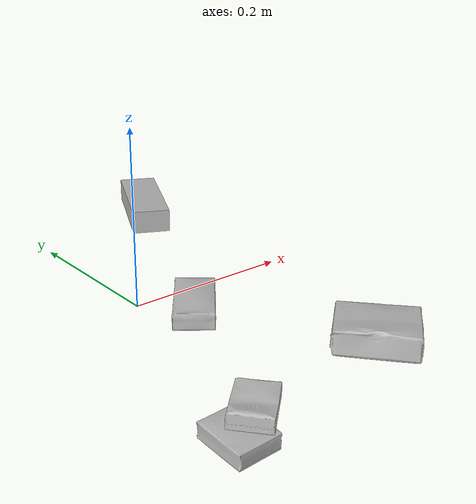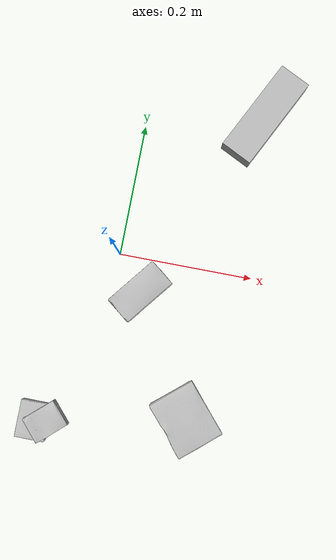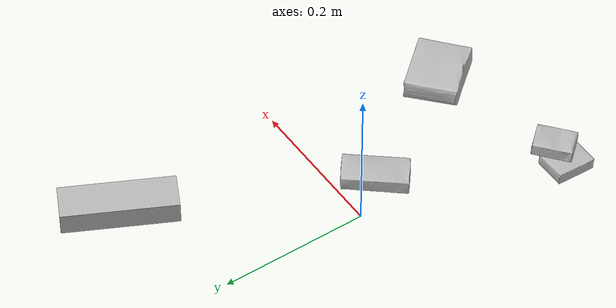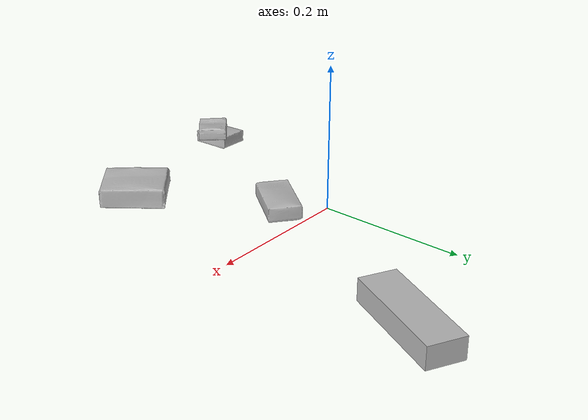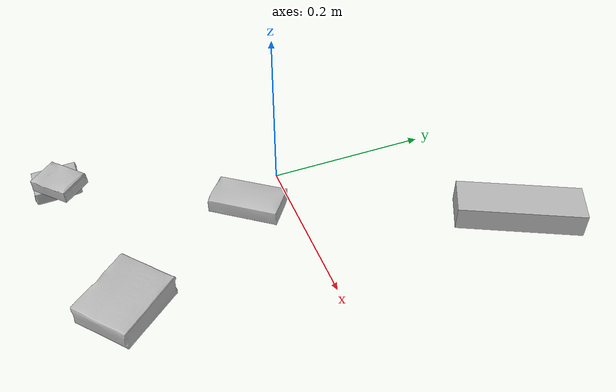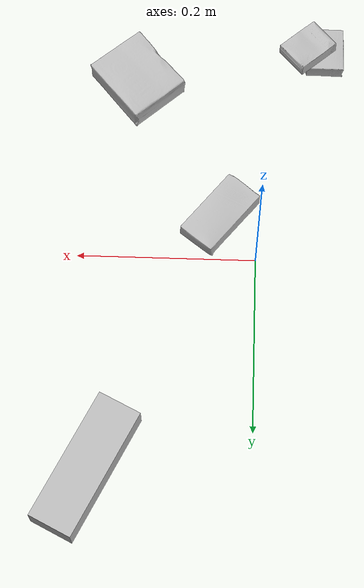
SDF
<sdf version="1.4">
  <world name="default">
    <light name="light1" type="point">
      <pose>0 0 1 0 0 0</pose>
      <diffuse>3 3 3 1</diffuse>
      <specular>3 3 3 1</specular>
    </light>
    <light name="light2" type="point">
      <pose>0 0.5 2 0 0 0</pose>
      <diffuse>1 1 1 1</diffuse>
      <specular>1 1 1 1</specular>
    </light>
    <light name="light3" type="point">
      <pose>0 0.5 2 0 0 0</pose>
      <diffuse>3 3 3 1</diffuse>
      <specular>3 3 3 1</specular>
    </light>
    <scene>
      <ambient>0.7 0.7 0.7</ambient>
    </scene>
    <model name="box1">
      <link name="link_box1">
        <collision name="default">
          <geometry>
            <mesh>
              <uri>model://sugar_box/collision_meshes/collision.obj</uri>
              <scale>0.5 0.5 0.5</scale>
            </mesh>
          </geometry>
          <surface>
            <friction>
              <ode>
                <mu>0.5</mu>
                <mu2>0.5</mu2>
              </ode>
            </friction>
          <contact>
        <ode>
            <max_vel>0</max_vel>
            <min_depth>0.0001</min_depth>
            <kp>1e8</kp>
        </ode>
    </contact></surface>
        </collision>
        <visual name="default">
          <geometry>
            <mesh>
              <uri>model://sugar_box/visual_meshes/visual.dae</uri>
              <scale>0.5 0.5 0.5</scale>
            </mesh>
          </geometry>
        </visual>
        <inertial>
          <mass>0.050072960555553436</mass>
          <pose>0.0005171863595023751 1.924554817378521e-05 -0.00018182402709499002 -0.0004046260967901466 0.0010506635218491861 0.0026153785561980193</pose>
          <inertia>
            <ixx>1.0430162e-05</ixx>
            <iyy>3.371243e-05</iyy>
            <izz>4.0357794e-05</izz>
            <ixy>0</ixy>
            <ixz>0</ixz>
            <iyz>0</iyz>
          </inertia>
        </inertial>
      </link>
      <pose>0.04053875058889389 -0.05062121897935867 0.011399303562939167 0.0007754351563242583 -0.023433293371006147 0.8994268302217933</pose>
    </model>
    <model name="box2">
      <link name="link_box2">
        <collision name="default">
          <geometry>
            <mesh>
              <uri>model://pudding_box/collision_meshes/collision.obj</uri>
              <scale>0.5 0.5 0.5</scale>
            </mesh>
          </geometry>
          <surface>
            <friction>
              <ode>
                <mu>0.5</mu>
                <mu2>0.5</mu2>
              </ode>
            </friction>
          <contact>
        <ode>
            <max_vel>0</max_vel>
            <min_depth>0.0001</min_depth>
            <kp>1e8</kp>
        </ode>
    </contact></surface>
        </collision>
        <visual name="default">
          <geometry>
            <mesh>
              <uri>model://pudding_box/visual_meshes/visual.dae</uri>
              <scale>0.5 0.5 0.5</scale>
            </mesh>
          </geometry>
        </visual>
        <inertial>
          <mass>0.026034390553832054</mass>
          <pose>0.00024474109522998333 0.00040339428232982755 -0.0002594413817860186 0.005213101355963405 -0.006603798228586091 0.020079817710543634</pose>
          <inertia>
            <ixx>7.3576343e-06</ixx>
            <iyy>4.9502682e-06</iyy>
            <izz>1.086547e-05</izz>
            <ixy>0</ixy>
            <ixz>0</ixz>
            <iyz>0</iyz>
          </inertia>
        </inertial>
      </link>
      <pose>-0.07697224617004395 -0.26339560747146606 0.009862796403467655 0.02248616078858335 -0.011327960777081151 0.0006717554738970752</pose>
    </model>
    <model name="box3">
      <link name="link_box3">
        <collision name="default">
          <geometry>
            <mesh>
              <uri>model://jenga/collision_meshes/collision.obj</uri>
              <scale>1.0 1.0 1.0</scale>
            </mesh>
          </geometry>
          <surface>
            <friction>
              <ode>
                <mu>0.5</mu>
                <mu2>0.5</mu2>
              </ode>
            </friction>
          <contact>
        <ode>
            <max_vel>0</max_vel>
            <min_depth>0.0001</min_depth>
            <kp>1e8</kp>
        </ode>
    </contact></surface>
        </collision>
        <visual name="default">
          <geometry>
            <mesh>
              <uri>model://jenga/visual_meshes/visual.dae</uri>
              <scale>1.0 1.0 1.0</scale>
            </mesh>
          </geometry>
        </visual>
        <inertial>
          <mass>0.2076648771762848</mass>
          <pose>-2.502856091268768e-07 -0.00010250010382151231 -4.0923405322246253e-05 0.0 -7.34215461761844e-07 0.0</pose>
          <inertia>
            <ixx>5.746591e-05</ixx>
            <iyy>0.00038938745</iyy>
            <izz>0.0004157042</izz>
            <ixy>0</ixy>
            <ixz>0</ixz>
            <iyz>0</iyz>
          </inertia>
        </inertial>
      </link>
      <pose>0.1755083054304123 0.24566376209259033 0.014999994076788425 -8.164406822178496e-09 -2.0737862172671957e-09 -2.0326459147955833</pose>
    </model>
    <model name="box4">
      <link name="link_box4">
        <collision name="default">
          <geometry>
            <mesh>
              <uri>model://gelatin_box/collision_meshes/collision.obj</uri>
              <scale>1.0 1.0 1.0</scale>
            </mesh>
          </geometry>
          <surface>
            <friction>
              <ode>
                <mu>0.5</mu>
                <mu2>0.5</mu2>
              </ode>
            </friction>
          <contact>
        <ode>
            <max_vel>0</max_vel>
            <min_depth>0.0001</min_depth>
            <kp>1e8</kp>
        </ode>
    </contact></surface>
        </collision>
        <visual name="default">
          <geometry>
            <mesh>
              <uri>model://gelatin_box/visual_meshes/visual.dae</uri>
              <scale>1.0 1.0 1.0</scale>
            </mesh>
          </geometry>
        </visual>
        <inertial>
          <mass>0.09577830880880356</mass>
          <pose>0.000431961816502735 0.00011156871187267825 -0.0003640321083366871 -0.0010503719862657887 -0.004755821487046037 0.01644055388468454</pose>
          <inertia>
            <ixx>6.761167e-05</ixx>
            <iyy>4.8294667e-05</iyy>
            <izz>0.00010292002</izz>
            <ixy>0</ixy>
            <ixz>0</ixz>
            <iyz>0</iyz>
          </inertia>
        </inertial>
      </link>
      <pose>0.14057622849941254 -0.21988333761692047 0.01516831386834383 0.005597017382433555 -0.007304074165812198 -2.444687093858709</pose>
    </model>
    <model name="box5">
      <link name="link_box5">
        <collision name="default">
          <geometry>
            <mesh>
              <uri>model://cracker_box/collision_meshes/collision.obj</uri>
              <scale>0.25 0.25 0.25</scale>
            </mesh>
          </geometry>
          <surface>
            <friction>
              <ode>
                <mu>0.5</mu>
                <mu2>0.5</mu2>
              </ode>
            </friction>
          <contact>
        <ode>
            <max_vel>0</max_vel>
            <min_depth>0.0001</min_depth>
            <kp>1e8</kp>
        </ode>
    </contact></surface>
        </collision>
        <visual name="default">
          <geometry>
            <mesh>
              <uri>model://cracker_box/visual_meshes/visual.dae</uri>
              <scale>0.25 0.25 0.25</scale>
            </mesh>
          </geometry>
        </visual>
        <inertial>
          <mass>0.019404999911785126</mass>
          <pose>0.00023660343140363693 6.358561950037256e-05 -0.00042573839891701937 -0.00031620745436260704 -0.011106489600575076 0.0025467952338677235</pose>
          <inertia>
            <ixx>3.084854e-06</ixx>
            <iyy>5.093699e-06</iyy>
            <izz>7.269177e-06</izz>
            <ixy>0</ixy>
            <ixz>0</ixz>
            <iyz>0</iyz>
          </inertia>
        </inertial>
      </link>
      <pose>-0.056561075150966644 -0.2587858736515045 0.0283981841057539 0.013436990439886042 -0.025252674618012977 0.721066308499019</pose>
    </model>
  <physics type="ode">
      <max_contacts>50</max_contacts>
      <ode>
        <solver>
          <type>quick</type>
          <iters>75</iters>
        </solver>
        <constraints>
          <contact_max_correcting_vel>0</contact_max_correcting_vel>
          <contact_surface_layer>0</contact_surface_layer>
        </constraints>
      </ode>
    </physics></world>
</sdf>
